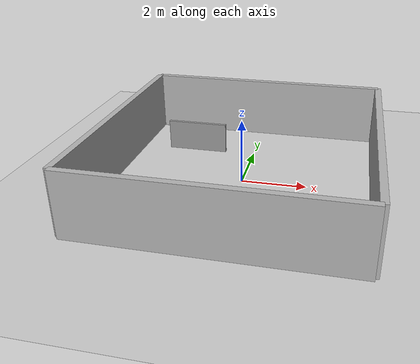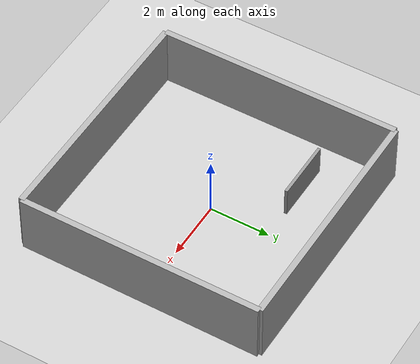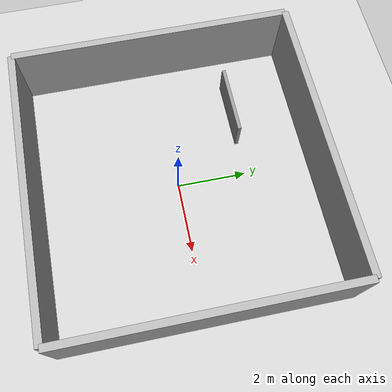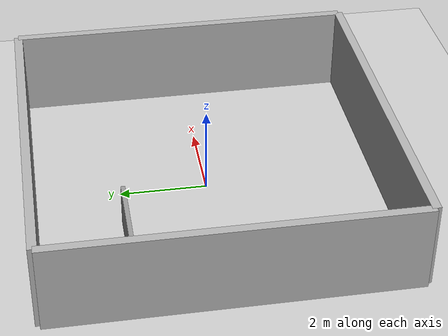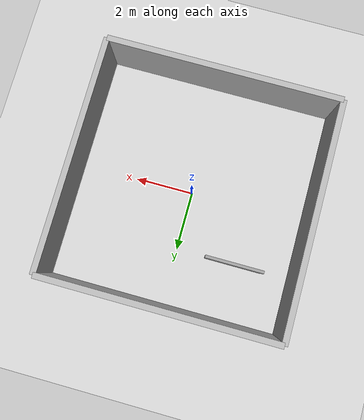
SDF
<?xml version="1.0" ?>
<sdf version="1.9">
  <world name="default">

    <!-- ==================== 基础系统（必须） ==================== -->
    <plugin filename="gz-sim-physics-system"
            name="gz::sim::systems::Physics"/>
    <plugin filename="gz-sim-user-commands-system"
            name="gz::sim::systems::UserCommands"/>
    <plugin filename="gz-sim-scene-broadcaster-system"
            name="gz::sim::systems::SceneBroadcaster"/>

    <!-- ==================== 传感器系统 ==================== -->
    <plugin filename="gz-sim-sensors-system"
            name="gz::sim::systems::Sensors">
      <render_engine>ogre2</render_engine>
    </plugin>

    <!-- ==================== IMU 系统 ==================== -->
    <plugin filename="gz-sim-imu-system"
            name="gz::sim::systems::Imu"/>

    <!-- ==================== 光照 ==================== -->
    <light type="directional" name="sun">
      <cast_shadows>true</cast_shadows>
      <pose>0 0 10 0 0 0</pose>
      <diffuse>0.8 0.8 0.8 1</diffuse>
      <specular>0.2 0.2 0.2 1</specular>
      <attenuation>
        <range>1000</range>
        <constant>0.9</constant>
        <linear>0.01</linear>
        <quadratic>0.001</quadratic>
      </attenuation>
      <direction>-0.5 0.1 -0.9</direction>
    </light>

    <!-- ==================== 地面 ==================== -->
    <model name="ground_plane">
      <static>true</static>
      <link name="link">
        <collision name="collision">
          <geometry><plane><normal>0 0 1</normal><size>100 100</size></plane></geometry>
        </collision>
        <visual name="visual">
          <geometry><plane><normal>0 0 1</normal><size>100 100</size></plane></geometry>
          <material>
            <ambient>0.8 0.8 0.8 1</ambient>
            <diffuse>0.8 0.8 0.8 1</diffuse>
          </material>
        </visual>
      </link>
    </model>

    <!-- 北墙 -->
    <model name="wall_north">
      <static>true</static>
      <pose>0 4 1 0 0 0</pose>
      <link name="link">
        <collision name="collision"><geometry><box><size>8 0.2 2</size></box></geometry></collision>
        <visual name="visual">
          <geometry><box><size>8 0.2 2</size></box></geometry>
          <material><ambient>0.7 0.7 0.7 1</ambient></material>
        </visual>
      </link>
    </model>

    <!-- 南墙 -->
    <model name="wall_south">
      <static>true</static>
      <pose>0 -4 1 0 0 0</pose>
      <link name="link">
        <collision name="collision"><geometry><box><size>8 0.2 2</size></box></geometry></collision>
        <visual name="visual">
          <geometry><box><size>8 0.2 2</size></box></geometry>
          <material><ambient>0.7 0.7 0.7 1</ambient></material>
        </visual>
      </link>
    </model>

    <!-- 西墙 -->
    <model name="wall_west">
      <static>true</static>
      <pose>-4 0 1 0 0 0</pose>
      <link name="link">
        <collision name="collision"><geometry><box><size>0.2 8 2</size></box></geometry></collision>
        <visual name="visual">
          <geometry><box><size>0.2 8 2</size></box></geometry>
          <material><ambient>0.7 0.7 0.7 1</ambient></material>
        </visual>
      </link>
    </model>

    <!-- 东墙 -->
    <model name="wall_east">
      <static>true</static>
      <pose>4 0 1 0 0 0</pose>
      <link name="link">
        <collision name="collision"><geometry><box><size>0.2 8 2</size></box></geometry></collision>
        <visual name="visual">
          <geometry><box><size>0.2 8 2</size></box></geometry>
          <material><ambient>0.7 0.7 0.7 1</ambient></material>
        </visual>
      </link>
    </model>

    <model name="wall1">
      <static>true</static>
      <pose>-2 2 0.5 0 0 0</pose>
      <link name="link">
        <collision name="collision"><geometry><box><size>2 0.1 1</size></box></geometry></collision>
        <visual name="visual">
          <geometry><box><size>2 0.1 1</size></box></geometry>
          <material><ambient>0.6 0.6 0.6 1</ambient></material>
        </visual>
      </link>
    </model>

  </world>
</sdf>
